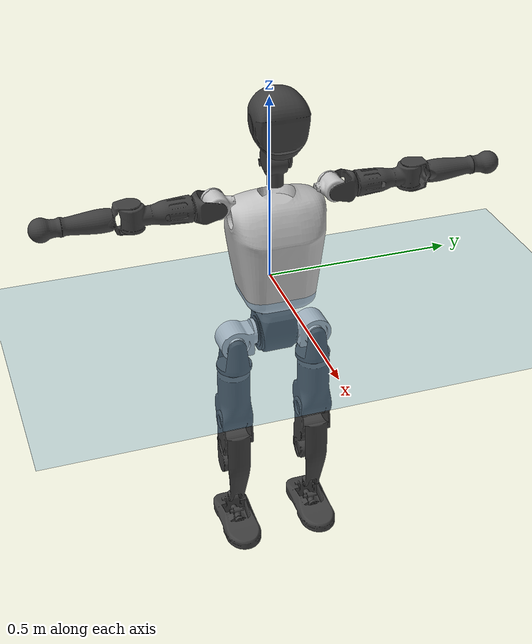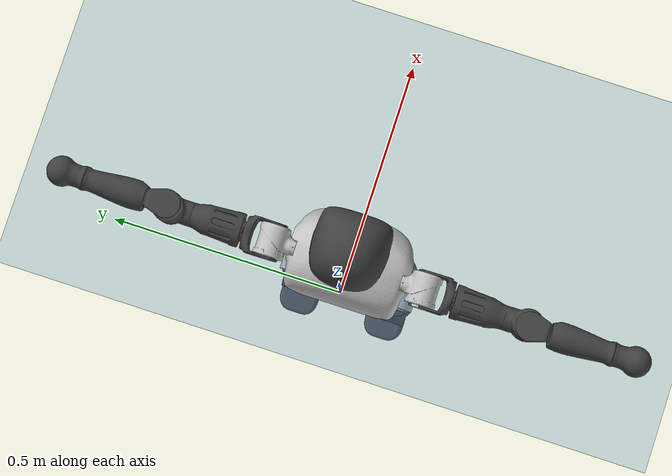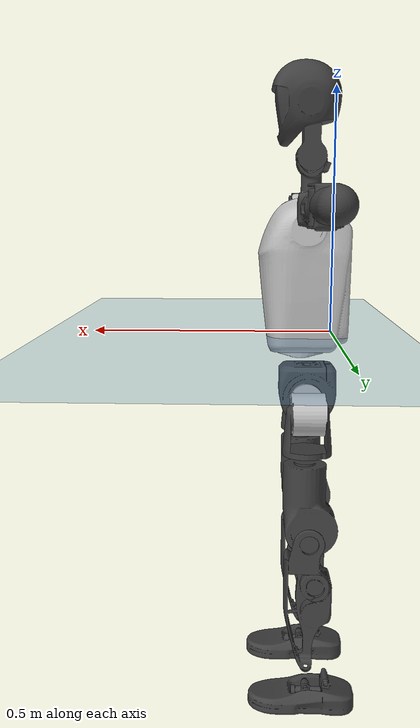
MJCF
<mujoco model="T1">
  <compiler angle="radian" assetdir="assets" balanceinertia="true" inertiafromgeom="false"/>

  <option timestep="0.005" density="1.2" viscosity="2e-05"/>

  <size nkey="1"/>

  <visual>
    <quality shadowsize="8192"/>
    <map shadowclip="0.5"/>
  </visual>

  <default>
    <default class="/">
      <joint armature="0.01" damping="0.01" frictionloss="0.1"/>
      <geom contype="0" conaffinity="0" group="1" solref="-1000 -80"/>
      <site size="0.01 0.005 0.005" group="5"/>
      <general forcelimited="true" biastype="affine" gainprm="25" biasprm="0 -25 -0.6"/>
      <default class="t1">
        <geom rgba="0.25 0.25 0.25 1"/>
        <default class="visual">
          <geom type="mesh" group="2"/>
        </default>
        <default class="collision">
          <geom group="3"/>
        </default>
        <default class="foot">
          <geom size="0.1115 0.05 0.015" type="box" condim="6" group="4" priority="1" solimp="0.015 1 0.015"/>
        </default>
        <default class="reward_collision_sphere">
          <geom group="5" rgba="1 0 0 1"/>
        </default>
      </default>
    </default>
  </default>

  <asset>
    <texture type="skybox" colorspace="auto" name="//unnamed_texture_0" builtin="gradient" rgb1="0.95 0.95 0.95" rgb2="0.95 0.95 0.95" width="100" height="600"/>
    <texture type="2d" colorspace="auto" name="texplane" builtin="checker" rgb1="0.345 0.575 0.748" rgb2="0.345 0.575 0.748" markrgb="1 1 1" width="512" height="512"/>
    <material name="MatPlane" class="/" texture="texplane" texuniform="true" texrepeat="2 2" specular="0.9"/>
    <mesh name="Trunk" class="/" file="Trunk.stl"/>
    <mesh name="H1" class="/" file="H1.stl"/>
    <mesh name="H2" class="/" file="H2.stl"/>
    <mesh name="AL1" class="/" file="AL1.stl"/>
    <mesh name="AL2" class="/" file="AL2.stl"/>
    <mesh name="AL3" class="/" file="AL3.stl"/>
    <mesh name="left_hand_link" class="/" file="left_hand_link.stl"/>
    <mesh name="AR1" class="/" file="AR1.stl"/>
    <mesh name="AR2" class="/" file="AR2.stl"/>
    <mesh name="AR3" class="/" file="AR3.stl"/>
    <mesh name="right_hand_link" class="/" file="right_hand_link.stl"/>
    <mesh name="Waist" class="/" file="Waist.stl"/>
    <mesh name="Hip_Pitch_Left" class="/" file="Hip_Pitch_Left.stl"/>
    <mesh name="Hip_Roll_Left" class="/" file="Hip_Roll_Left.stl"/>
    <mesh name="Hip_Yaw_Left" class="/" file="Hip_Yaw_Left.stl"/>
    <mesh name="Shank_Left" class="/" file="Shank_Left.stl"/>
    <mesh name="Ankle_Cross_Left" class="/" file="Ankle_Cross_Left.stl"/>
    <mesh name="left_foot_link" class="/" file="left_foot_link.stl"/>
    <mesh name="Hip_Pitch_Right" class="/" file="Hip_Pitch_Right.stl"/>
    <mesh name="Hip_Roll_Right" class="/" file="Hip_Roll_Right.stl"/>
    <mesh name="Hip_Yaw_Right" class="/" file="Hip_Yaw_Right.stl"/>
    <mesh name="Shank_Right" class="/" file="Shank_Right.stl"/>
    <mesh name="Ankle_Cross_Right" class="/" file="Ankle_Cross_Right.stl"/>
    <mesh name="right_foot_link" class="/" file="right_foot_link.stl"/>
  </asset>

  <worldbody>
    <geom name="floor" class="/" size="100 100 0.125" type="plane" group="0" material="MatPlane"/>
    <light name="toplight_shadow" class="/" pos="0 0 5" dir="0.0990148 0.0990148 -0.990148" type="directional" ambient="0.04 0.04 0.04" diffuse="0.55 0.55 0.55" specular="0.12 0.12 0.12"/>
    <light name="toplight_fill" class="/" pos="0 0 5" dir="0.0990148 0.0990148 -0.990148" type="directional" castshadow="false" ambient="0.04 0.04 0.04" diffuse="0.3 0.3 0.3" specular="0.08 0.08 0.08"/>
    <body name="trunk" childclass="t1" pos="-9.46483e-05 -0.00145147 -0.000548484" quat="0.999999 0.000819144 0.000653042 0.00084731">
      <inertial pos="0.0398028 -0.00359903 0.123228" quat="0.999955 0.000981041 -0.00947142 0.000343869" mass="11.0463" diaginertia="0.0268026 0.0803617 0.124759"/>
      <joint name="//unnamed_joint_0" type="free" armature="0" damping="0" frictionloss="0"/>
      <geom name="//unnamed_geom_1" class="visual" rgba="0.76 0.76 0.76 1" mesh="Trunk"/>
      <geom name="//unnamed_geom_2" class="collision" size="0.0744255 0.0992341 0.148851" pos="0.0468349 0 0.141951" type="box"/>
      <geom name="//unnamed_geom_3" class="reward_collision_sphere" size="0.114119" pos="0.0468349 0 0.118293"/>
      <geom name="//unnamed_geom_4" class="reward_collision_sphere" size="0.0148851" pos="0.0468349 0.0861487 0"/>
      <geom name="//unnamed_geom_5" class="reward_collision_sphere" size="0.0148851" pos="0.0468349 -0.0861487 0"/>
      <geom name="//unnamed_geom_6" class="reward_collision_sphere" size="0.0148851" pos="0.0468349 0.108446 0.212927"/>
      <geom name="//unnamed_geom_7" class="reward_collision_sphere" size="0.0148851" pos="0.0468349 -0.108446 0.212927"/>
      <site name="imu" pos="0.0122523 -0.00425988 -0.0122954" size="0.00992341"/>
      <camera name="track" pos="0 -2.02703 0" quat="0.707107 0.707107 0 0" mode="trackcom"/>
      <camera name="ego_camera" pos="0.095231 0 0.496829" quat="-0.5 -0.5 0.5 0.5"/>
      <body name="H1" pos="0.046576 0.000982879 0.287394" quat="1 3.74976e-05 0.000264602 9.42313e-06">
        <inertial pos="-0.00338137 0.000995842 0.0690192" quat="0.761593 -0.0153677 0.0147588 0.647706" mass="0.435207" diaginertia="7.01277e-05 0.000233203 0.000327755"/>
        <joint name="AAHead_yaw" pos="0 0 0" axis="-0.00492527 0.0120606 0.999915" stiffness="0.00858602" range="-1.56351 1.59082" armature="0.00886527" damping="0.0096959" frictionloss="0.100171"/>
        <geom name="//unnamed_geom_8" class="visual" mesh="H1"/>
        <body name="H2" pos="0.00133987 0.00245986 0.0728448" quat="1 -0.000463536 9.68327e-05 0.000246419">
          <inertial pos="0.00705963 0.00361027 0.116878" quat="0.988899 0.106337 -0.0693138 -0.0772385" mass="0.618089" diaginertia="0.000613849 0.00206225 0.00400421"/>
          <joint name="Head_pitch" pos="0 0 0" axis="0.00204347 -0.999992 0.00347348" stiffness="0.00107364" range="-1.23038 0.350704" armature="0.0086058" damping="0.0103491" frictionloss="0.110156"/>
          <geom name="//unnamed_geom_9" class="visual" mesh="H2"/>
          <geom name="//unnamed_geom_10" class="collision" size="0.0793872" pos="0.00780582 0 0.130122"/>
          <geom name="//unnamed_geom_11" class="reward_collision_sphere" size="0.0893106" pos="0.0156116 0 0.118293"/>
        </body>
      </body>
      <body name="AL1" pos="0.045717 0.107949 0.256758" quat="1 0.000111008 0.000424401 5.4686e-07">
        <inertial pos="-0.00328834 0.0445376 0.000591672" quat="0.506854 0.495851 -0.501819 0.495387" mass="0.521456" diaginertia="0.000403709 0.00140154 0.000664504"/>
        <joint name="Left_Shoulder_Pitch" pos="0 0 0" axis="-0.00923901 0.999908 0.00993278" range="-3.29043 1.1927" armature="0.0104751" damping="0.00939072" frictionloss="0.100715"/>
        <geom name="//unnamed_geom_12" class="visual" rgba="0.76 0.76 0.76 1" mesh="AL1"/>
        <body name="AL2" pos="-0.000395846 0.0469656 -0.0026151" quat="1 0.000257719 9.86719e-05 8.82076e-05">
          <inertial pos="0.00452473 0.0369611 -0.00304277" quat="0.476861 0.512437 -0.491092 0.518498" mass="0.152227" diaginertia="0.000115232 0.000368668 0.000400823"/>
          <joint name="Left_Shoulder_Roll" pos="0 0 0" axis="-0.999973 -0.00553002 0.00475619" stiffness="0.000226362" range="-1.58049 1.71907" armature="0.00988629" damping="0.00268145" frictionloss="0.0978035"/>
          <geom name="//unnamed_geom_13" class="visual" mesh="AL2"/>
          <body name="AL3" pos="0.00129655 0.0623092 0.00146086" quat="1 -0.000228762 0.000121337 -2.15834e-05">
            <inertial pos="-0.00257399 0.0864124 -0.000631164" quat="0.709817 0.704283 -0.00194713 -0.0118728" mass="1.01566" diaginertia="0.0038425 0.0138191 0.00141676"/>
            <joint name="Left_Elbow_Pitch" pos="0 0 0" axis="9.09451e-05 -1 0.000968258" range="-2.27145 2.29176" armature="0.0098381" damping="0.0211965" frictionloss="0.111761"/>
            <geom name="//unnamed_geom_14" class="visual" mesh="AL3"/>
            <geom name="//unnamed_geom_15" class="collision" size="0.0297702 0.0744255" pos="0 0.0506757 0" quat="0.707105 0.707108 0 0" type="cylinder"/>
            <geom name="//unnamed_geom_16" class="reward_collision_sphere" size="0.0357243"/>
            <body name="left_hand_link" pos="0.00313861 0.151748 0.00312788" quat="1 0.000243718 -0.00036345 0.000302493">
              <inertial pos="0.00254706 0.108691 -0.00233282" quat="0.707855 0.706357 -0.000113774 -0.000274306" mass="0.319182" diaginertia="0.00235898 0.00889776 0.000513321"/>
              <joint name="Left_Elbow_Yaw" pos="0 0 0" axis="0.000457367 -0.00717267 0.999974" range="-2.42712 0.0167009" armature="0.0110933" damping="0.0184917" frictionloss="0.0989434"/>
              <geom name="//unnamed_geom_17" class="visual" mesh="left_hand_link"/>
              <geom name="//unnamed_geom_18" class="collision" size="0.0297702 0.0868298" pos="0 0.131757 0" quat="0.707105 0.707108 0 0" type="cylinder"/>
              <geom name="//unnamed_geom_19" class="reward_collision_sphere" size="0.049617"/>
              <geom name="//unnamed_geom_20" class="reward_collision_sphere" size="0.0347319" pos="0 0.111487 0"/>
              <geom name="//unnamed_geom_21" class="reward_collision_sphere" size="0.0347319" pos="0 0.217905 0"/>
            </body>
          </body>
        </body>
      </body>
      <body name="AR1" pos="0.0459004 -0.1064 0.258035" quat="0.999999 -0.000292803 0.000286768 0.000997758">
        <inertial pos="-9.4748e-05 -0.0467282 0.0009345" quat="0.502948 0.494704 -0.504331 0.497958" mass="0.534043" diaginertia="0.000395693 0.00143558 0.000704142"/>
        <joint name="Right_Shoulder_Pitch" pos="0 0 0" axis="0.002109 -0.999998 0.000363383" stiffness="0.0010523" range="-1.18284 3.31227" armature="0.009915" damping="0.0111662" frictionloss="0.0942629"/>
        <geom name="//unnamed_geom_22" class="visual" rgba="0.76 0.76 0.76 1" mesh="AR1"/>
        <body name="AR2" pos="-0.000110404 -0.0480667 -0.00278593" quat="0.999999 -0.000411418 0.00103703 -0.00102122">
          <inertial pos="0.00239755 -0.0382752 0.000792605" quat="0.509827 0.478607 -0.517554 0.493102" mass="0.151272" diaginertia="0.000112786 0.00036532 0.00039571"/>
          <joint name="Right_Shoulder_Roll" pos="0 0 0" axis="-0.999998 0.00168424 0.0008632" range="-1.76153 1.54714" armature="0.00988418" damping="0" frictionloss="0.104137"/>
          <geom name="//unnamed_geom_23" class="visual" mesh="AR2"/>
          <body name="AR3" pos="-0.00294593 -0.0611589 -2.7834e-05" quat="0.999999 0.000936026 0.00106197 4.31953e-05">
            <inertial pos="0.00187975 -0.0867147 0.00099634" quat="0.709099 0.705092 0.00414677 0.00252457" mass="0.992761" diaginertia="0.00378246 0.0138551 0.00143813"/>
            <joint name="Right_Elbow_Pitch" pos="0 0 0" axis="0.00801565 0.999963 -0.0030528" range="-2.27968 2.22773" armature="0.0102489" damping="0.00514288" frictionloss="0.106068"/>
            <geom name="//unnamed_geom_24" class="visual" mesh="AR3"/>
            <geom name="//unnamed_geom_25" class="collision" size="0.0297702 0.0744255" pos="0 -0.0506757 0" quat="0.707105 0.707108 0 0" type="cylinder"/>
            <geom name="//unnamed_geom_26" class="reward_collision_sphere" size="0.0357243"/>
            <body name="right_hand_link" pos="-0.00292898 -0.151194 0.00226128" quat="0.999999 -0.00104528 0.000108589 -0.00101472">
              <inertial pos="0.00202626 -0.110723 -0.00188093" quat="0.706253 0.707959 0.000699492 0.000830138" mass="0.309126" diaginertia="0.00223391 0.00820434 0.000499568"/>
              <joint name="Right_Elbow_Yaw" pos="0 0 0" axis="0.00293866 -0.00126196 0.999995" range="0.00831939 2.38142" armature="0.00976654" damping="0.00587674" frictionloss="0.0975802"/>
              <geom name="//unnamed_geom_27" class="visual" mesh="right_hand_link"/>
              <geom name="//unnamed_geom_28" class="collision" size="0.0297702 0.0868298" pos="0 -0.131757 0" quat="0.707105 0.707108 0 0" type="cylinder"/>
              <geom name="//unnamed_geom_29" class="reward_collision_sphere" size="0.049617"/>
              <geom name="//unnamed_geom_30" class="reward_collision_sphere" size="0.0347319" pos="0 -0.111487 0"/>
              <geom name="//unnamed_geom_31" class="reward_collision_sphere" size="0.0347319" pos="0 -0.217905 0"/>
            </body>
          </body>
        </body>
      </body>
      <body name="Waist" pos="0.0468497 -0.00279795 -0.134847" quat="1 0.00031835 -0.000224475 6.05069e-05">
        <inertial pos="0.00111508 0.00210595 0.00966488" quat="0.985586 0.00547354 -0.168974 0.00614282" mass="2.37044" diaginertia="0.00152047 0.00539471 0.0103384"/>
        <joint name="Waist" pos="0 0 0" axis="4.75032e-06 0.000232191 1" range="-1.59244 1.55571" armature="0.00952166" damping="0.00160014" frictionloss="0.108826"/>
        <geom name="//unnamed_geom_32" class="visual" mesh="Waist"/>
        <body name="Hip_Pitch_Left" pos="0.00379459 0.1067 -0.000816192" quat="1 0.000137672 -3.59847e-05 0.000151076">
          <inertial pos="0.000105097 -0.00819792 -0.0243092" quat="0.975168 0.221022 0.0138234 0.00217708" mass="0.974649" diaginertia="0.000514844 0.00153303 0.00285308"/>
          <joint name="Left_Hip_Pitch" pos="0 0 0" axis="0.00540624 0.999936 -0.0099714" stiffness="0.0117879" range="-1.82045 1.62817" armature="0.0101897" damping="0" frictionloss="0.101868"/>
          <geom name="//unnamed_geom_33" class="visual" rgba="0.76 0.76 0.76 1" mesh="Hip_Pitch_Left"/>
          <body name="Hip_Roll_Left" pos="0.00293729 0.00162053 -0.0265928" quat="1 -1.64133e-05 -7.29166e-05 -9.53452e-05">
            <inertial pos="0.00200188 -0.000825868 -0.0663054" quat="0.709094 -0.008747 -0.00315708 0.705052" mass="0.383624" diaginertia="0.00053713 0.00162178 0.00119663"/>
            <joint name="Left_Hip_Roll" pos="0 0 0" axis="-0.999969 0.00190465 0.00759179" range="-1.58472 0.25579" armature="0.009254" damping="0.011065" frictionloss="0.0947793"/>
            <geom name="//unnamed_geom_34" class="visual" mesh="Hip_Roll_Left"/>
            <geom name="//unnamed_geom_35" class="reward_collision_sphere" size="0.0545787"/>
            <body name="Hip_Yaw_Left" pos="0.00140163 0.00240121 -0.0957887" quat="1 -2.73175e-05 3.31252e-05 8.79608e-05">
              <inertial pos="-0.00690365 -0.000245108 -0.105571" quat="0.686758 -0.034687 -0.0318083 0.725361" mass="2.08156" diaginertia="0.00759065 0.0266631 0.00621954"/>
              <joint name="Left_Hip_Yaw" pos="0 0 0" axis="0.000833236 -0.000155946 -1" range="-0.979239 1.04916" armature="0.01094" damping="0.00336641" frictionloss="0.0991643"/>
              <geom name="//unnamed_geom_36" class="visual" mesh="Hip_Yaw_Left"/>
              <geom name="//unnamed_geom_37" class="collision" size="0.049617 0.0793872" type="cylinder"/>
              <body name="Shank_Left" pos="-0.0101199 0.000420451 -0.161379" quat="1 0.000383325 -0.000551732 -5.40287e-05">
                <inertial pos="-0.00358629 3.00203e-05 -0.149834" quat="0.997245 0.000366923 -0.0243263 0.0700791" mass="1.69442" diaginertia="0.0100852 0.0358623 0.00407208"/>
                <joint name="Left_Knee_Pitch" pos="0 0 0" axis="-0.000860006 1 0.000229397" stiffness="0.0086886" range="0.0379835 2.32909" armature="0.0100978" damping="0.00714742" frictionloss="0.100857"/>
                <geom name="//unnamed_geom_38" class="visual" mesh="Shank_Left"/>
                <geom name="//unnamed_geom_39" class="collision" size="0.049617 0.0744255" pos="0 0 -0.141951" type="cylinder"/>
                <geom name="//unnamed_geom_40" class="reward_collision_sphere" size="0.0645021"/>
                <body name="Ankle_Cross_Left" pos="-0.000957583 -0.0005026 -0.334072" quat="1 -0.000264904 -0.000211999 -0.000185105">
                  <inertial pos="-0.00540784 0.002747 -0.00962265" quat="0.443105 0.551082 0.550961 0.44318" mass="0.068974" diaginertia="8.56913e-06 2.65418e-05 2.64161e-05"/>
                  <joint name="Left_Ankle_Pitch" pos="0 0 0" axis="0.00574017 0.999918 -0.0114195" range="-0.917229 0.332628" armature="0.00850566" damping="0.0114441" frictionloss="0.108628"/>
                  <geom name="//unnamed_geom_41" class="visual" mesh="Ankle_Cross_Left"/>
                  <body name="left_foot_link" pos="-0.000101036 0.00123648 -0.0122917" quat="0.999999 0.000668589 -0.000919448 0.00061782">
                    <inertial pos="-0.00278768 0.000881713 -0.0112091" quat="0.00278706 0.624542 -0.00646955 0.780959" mass="0.653913" diaginertia="0.000803209 0.00253283 0.0052589"/>
                    <joint name="Left_Ankle_Roll" pos="0 0 0" axis="-0.999989 -0.0046682 -0.00023675" range="-0.496174 0.387644" armature="0.0108834" damping="0.0178406" frictionloss="0.0857487"/>
                    <geom name="//unnamed_geom_42" class="visual" mesh="left_foot_link"/>
                    <geom name="left_foot" class="foot" size="0.106524 0.0463262 0.0157235" pos="0.00780582 0 -0.0177439"/>
                    <geom name="//unnamed_geom_44" class="reward_collision_sphere" size="0.0516017" pos="0.00780582 0 -0.0177439"/>
                    <geom name="//unnamed_geom_45" class="reward_collision_sphere" size="0.0297702" pos="0.0741553 -0.0233108 -0.0177439"/>
                    <geom name="//unnamed_geom_46" class="reward_collision_sphere" size="0.0297702" pos="-0.0546408 -0.0233108 -0.0177439"/>
                    <site name="left_foot" class="foot" pos="0.00780582 0 -0.0177439" size="0.00992341"/>
                  </body>
                </body>
              </body>
            </body>
          </body>
        </body>
        <body name="Hip_Pitch_Right" pos="-0.00186908 -0.110435 0.000648272" quat="0.999999 -0.000751542 0.000124236 0.000808623">
          <inertial pos="0.000870911 0.00508697 -0.019027" quat="0.973959 -0.226186 0.0134432 -0.00791629" mass="0.995658" diaginertia="0.000534661 0.00160638 0.00302617"/>
          <joint name="Right_Hip_Pitch" pos="0 0 0" axis="-0.00223337 -0.999998 -4.33604e-05" range="-1.57766 1.78862" armature="0.0112349" damping="0.00574496" frictionloss="0.0952036"/>
          <geom name="//unnamed_geom_47" class="visual" rgba="0.76 0.76 0.76 1" mesh="Hip_Pitch_Right"/>
          <body name="Hip_Roll_Right" pos="0.00223251 -0.0027125 -0.025613" quat="1 -0.000100005 4.51867e-05 -5.39317e-05">
            <inertial pos="0.00111415 0.000312676 -0.0609066" quat="0.707087 -0.00593675 -0.00602321 0.707076" mass="0.397977" diaginertia="0.000517993 0.00171637 0.00121209"/>
            <joint name="Right_Hip_Roll" pos="0 0 0" axis="-0.999949 0.00401155 0.00924144" stiffness="0.00948191" range="-0.202681 1.52335" armature="0.00925983" damping="0" frictionloss="0.0863415"/>
            <geom name="//unnamed_geom_48" class="visual" mesh="Hip_Roll_Right"/>
            <geom name="//unnamed_geom_49" class="reward_collision_sphere" size="0.0545787"/>
            <body name="Hip_Yaw_Right" pos="0.00258637 -0.00291628 -0.0950151" quat="1 -0.000813586 -0.000270274 -1.94472e-05">
              <inertial pos="-0.00417869 -0.00293511 -0.103367" quat="0.714879 -0.0338898 -0.0226531 0.698059" mass="2.1413" diaginertia="0.00724827 0.027782 0.00582962"/>
              <joint name="Right_Hip_Yaw" pos="0 0 0" axis="-0.00485059 0.00798276 -0.999956" stiffness="0.0117383" range="-1.02126 0.988162" armature="0.00853486" damping="0.0182061" frictionloss="0.0962191"/>
              <geom name="//unnamed_geom_50" class="visual" mesh="Hip_Yaw_Right"/>
              <geom name="//unnamed_geom_51" class="collision" size="0.049617 0.0793872" type="cylinder"/>
              <body name="Shank_Right" pos="-0.00837437 0.00164152 -0.159753" quat="0.999999 -0.000495719 -0.000425806 0.00105199">
                <inertial pos="-0.00337496 -0.00082331 -0.145867" quat="0.998964 0.000183784 -0.0363088 -0.0274391" mass="1.71412" diaginertia="0.01046 0.0369639 0.00463855"/>
                <joint name="Right_Knee_Pitch" pos="0 0 0" axis="8.94695e-06 -0.999999 -0.00137074" range="-2.34181 0.044751" armature="0.00991291" damping="0.0224148" frictionloss="0.100209"/>
                <geom name="//unnamed_geom_52" class="visual" mesh="Shank_Right"/>
                <geom name="//unnamed_geom_53" class="collision" size="0.049617 0.0744255" pos="0 0 -0.141951" type="cylinder"/>
                <geom name="//unnamed_geom_54" class="reward_collision_sphere" size="0.0645021"/>
                <body name="Ankle_Cross_Right" pos="0.00215942 0.000899055 -0.333017" quat="0.999999 0.000779608 -0.000181218 -0.00107011">
                  <inertial pos="-0.00195866 0.00297399 -0.0100009" quat="0.443389 0.550496 0.551448 0.443019" mass="0.0710532" diaginertia="8.16894e-06 2.74867e-05 2.5355e-05"/>
                  <joint name="Right_Ankle_Pitch" pos="0 0 0" axis="-0.00925327 -0.99994 -0.00582316" range="-0.393118 0.857431" armature="0.00970136" damping="0.0060425" frictionloss="0.104564"/>
                  <geom name="//unnamed_geom_55" class="visual" mesh="Ankle_Cross_Right"/>
                  <body name="right_foot_link" pos="0.00331832 -0.00077285 -0.0129464" quat="1 1.73735e-05 -0.000196231 8.52469e-05">
                    <inertial pos="0.00013414 0.00260951 -0.0111197" quat="0.00369549 0.621772 -0.00570969 0.783169" mass="0.710967" diaginertia="0.000815943 0.00262874 0.00524655"/>
                    <joint name="Right_Ankle_Roll" pos="0 0 0" axis="-0.999989 -0.00454425 -0.00141718" range="-0.418281 0.401548" armature="0.00983381" damping="0.00529751" frictionloss="0.0868091"/>
                    <geom name="//unnamed_geom_56" class="visual" mesh="right_foot_link"/>
                    <geom name="right_foot" class="foot" size="0.099251 0.0491645 0.0155184" pos="0.00780582 0 -0.0177439"/>
                    <geom name="//unnamed_geom_58" class="reward_collision_sphere" size="0.0396936"/>
                    <geom name="//unnamed_geom_59" class="reward_collision_sphere" size="0.0297702" pos="0.00780582 0 -0.0177439"/>
                    <geom name="//unnamed_geom_60" class="reward_collision_sphere" size="0.0297702" pos="0.0741553 0.0233108 -0.0177439"/>
                    <geom name="//unnamed_geom_61" class="reward_collision_sphere" size="0.0297702" pos="-0.0546408 0.0233108 -0.0177439"/>
                    <site name="right_foot" class="foot" pos="0.00780582 0 -0.0177439" size="0.00992341"/>
                  </body>
                </body>
              </body>
            </body>
          </body>
        </body>
      </body>
    </body>
  </worldbody>

  <contact>
    <pair class="/" geom1="floor" geom2="left_foot" name="//unnamed_contact_0"/>
    <pair class="/" geom1="floor" geom2="right_foot" name="//unnamed_contact_1"/>
  </contact>

  <actuator>
    <general name="AAHead_yaw" class="/" joint="AAHead_yaw" forcerange="-7.00159 7.00159" gainprm="23.1982" biasprm="0 -23.1982 -0.606205"/>
    <general name="Head_pitch" class="/" joint="Head_pitch" forcerange="-6.90369 6.90369" gainprm="23.1982" biasprm="0 -23.1982 -0.606205"/>
    <general name="Left_Shoulder_Pitch" class="/" joint="Left_Shoulder_Pitch" forcerange="-16.3604 16.3604" gainprm="23.1982" biasprm="0 -23.1982 -0.606205"/>
    <general name="Left_Shoulder_Roll" class="/" joint="Left_Shoulder_Roll" forcerange="-17.5945 17.5945" gainprm="23.1982" biasprm="0 -23.1982 -0.606205"/>
    <general name="Left_Elbow_Pitch" class="/" joint="Left_Elbow_Pitch" forcerange="-17.0286 17.0286" gainprm="23.1982" biasprm="0 -23.1982 -0.606205"/>
    <general name="Left_Elbow_Yaw" class="/" joint="Left_Elbow_Yaw" forcerange="-17.6604 17.6604" gainprm="23.1982" biasprm="0 -23.1982 -0.606205"/>
    <general name="Right_Shoulder_Pitch" class="/" joint="Right_Shoulder_Pitch" forcerange="-18.6067 18.6067" gainprm="23.1982" biasprm="0 -23.1982 -0.606205"/>
    <general name="Right_Shoulder_Roll" class="/" joint="Right_Shoulder_Roll" forcerange="-18.1223 18.1223" gainprm="23.1982" biasprm="0 -23.1982 -0.606205"/>
    <general name="Right_Elbow_Pitch" class="/" joint="Right_Elbow_Pitch" forcerange="-16.7332 16.7332" gainprm="23.1982" biasprm="0 -23.1982 -0.606205"/>
    <general name="Right_Elbow_Yaw" class="/" joint="Right_Elbow_Yaw" forcerange="-16.629 16.629" gainprm="23.1982" biasprm="0 -23.1982 -0.606205"/>
    <general name="Waist" class="/" joint="Waist" forcerange="-28.1504 28.1504" gainprm="23.1982" biasprm="0 -23.1982 -0.606205"/>
    <general name="Left_Hip_Pitch" class="/" joint="Left_Hip_Pitch" forcerange="-45.2398 45.2398" gainprm="23.1982" biasprm="0 -23.1982 -0.606205"/>
    <general name="Left_Hip_Roll" class="/" joint="Left_Hip_Roll" forcerange="-28.0978 28.0978" gainprm="23.1982" biasprm="0 -23.1982 -0.606205"/>
    <general name="Left_Hip_Yaw" class="/" joint="Left_Hip_Yaw" forcerange="-28.0488 28.0488" gainprm="23.1982" biasprm="0 -23.1982 -0.606205"/>
    <general name="Left_Knee_Pitch" class="/" joint="Left_Knee_Pitch" forcerange="-60.4964 60.4964" gainprm="23.1982" biasprm="0 -23.1982 -0.606205"/>
    <general name="Left_Ankle_Pitch" class="/" joint="Left_Ankle_Pitch" forcerange="-21.7742 21.7742" gainprm="23.1982" biasprm="0 -23.1982 -0.606205"/>
    <general name="Left_Ankle_Roll" class="/" joint="Left_Ankle_Roll" forcerange="-13.3468 13.3468" gainprm="23.1982" biasprm="0 -23.1982 -0.606205"/>
    <general name="Right_Hip_Pitch" class="/" joint="Right_Hip_Pitch" forcerange="-44.9389 44.9389" gainprm="23.1982" biasprm="0 -23.1982 -0.606205"/>
    <general name="Right_Hip_Roll" class="/" joint="Right_Hip_Roll" forcerange="-32.7969 32.7969" gainprm="23.1982" biasprm="0 -23.1982 -0.606205"/>
    <general name="Right_Hip_Yaw" class="/" joint="Right_Hip_Yaw" forcerange="-26.8605 26.8605" gainprm="23.1982" biasprm="0 -23.1982 -0.606205"/>
    <general name="Right_Knee_Pitch" class="/" joint="Right_Knee_Pitch" forcerange="-54.0662 54.0662" gainprm="23.1982" biasprm="0 -23.1982 -0.606205"/>
    <general name="Right_Ankle_Pitch" class="/" joint="Right_Ankle_Pitch" forcerange="-19.7452 19.7452" gainprm="23.1982" biasprm="0 -23.1982 -0.606205"/>
    <general name="Right_Ankle_Roll" class="/" joint="Right_Ankle_Roll" forcerange="-16.4381 16.4381" gainprm="23.1982" biasprm="0 -23.1982 -0.606205"/>
  </actuator>

  <sensor>
    <gyro site="imu" name="imu_angular_velocity"/>
    <velocimeter site="imu" name="imu_linear_velocity"/>
    <framelinvel objtype="site" objname="left_foot" name="left_foot_global_linear_velocity"/>
    <framelinvel objtype="site" objname="right_foot" name="right_foot_global_linear_velocity"/>
  </sensor>

  <keyframe>
    <key name="home" qpos="0 0 0.6385 1 0 0 0 0 0 0 1.4 0 -0.4 0 -1.4 0 0.4 0 -0.4 0 0 0.8 -0.4 0 0.4 0 0 -0.8 0.4 0"/>
  </keyframe>
</mujoco>
